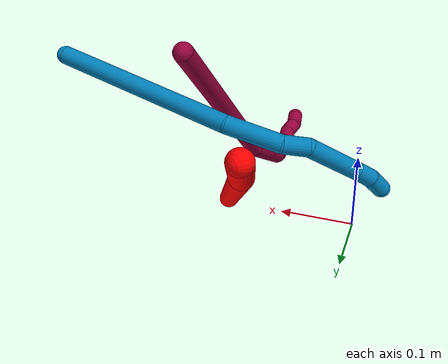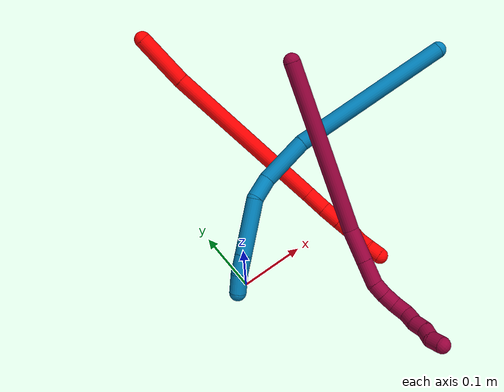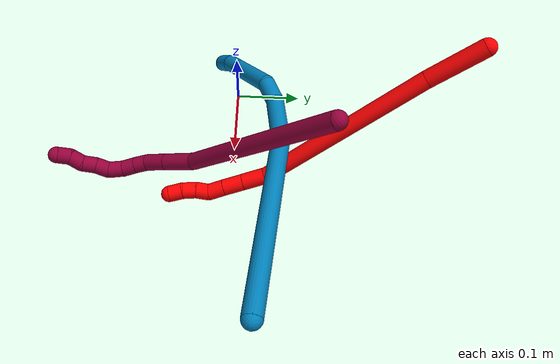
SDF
<sdf version="1.7">
 <world name="default">
  <model name="photoneo_s_sensor">
   <static>1</static>
   <pose>0 0 2 1.57079 1.57079 3.14159</pose>
   <link name="link">
    <inertial><mass>0.1</mass></inertial>
    <sensor name="sensor" type="depth">
     <update_rate>30</update_rate>
     <camera>
      <horizontal_fov>1.22</horizontal_fov>
      <image><width>1920</width><height>1200</height><format>B8G8R8</format></image>
      <clip><near>0.1</near><far>2</far></clip>
      <depth_camera><output>points</output></depth_camera>
     </camera>
     <plugin name="camera_plugin" filename="libgazebo_ros_depth_camera.so">
      <baseline>0.2</baseline>
      <alwaysOn>1</alwaysOn>
      <updateRate>0.0</updateRate>
      <cameraName>camera_ir</cameraName>
      <imageTopicName>/camera/color/image_raw</imageTopicName>
      <cameraInfoTopicName>/camera/color/camera_info</cameraInfoTopicName>
      <depthImageTopicName>/camera/depth/image_raw</depthImageTopicName>
      <depthImageCameraInfoTopicName>/camera/depth/camera_info</depthImageCameraInfoTopicName>
      <pointCloudTopicName>/camera/depth/points</pointCloudTopicName>
      <frameName>fr_optical</frameName>
      <pointCloudCutoff>0.1</pointCloudCutoff>
      <pointCloudCutoffMax>2.0</pointCloudCutoffMax>
      <distortionK1>0</distortionK1>
      <distortionK2>0</distortionK2>
      <distortionK3>0</distortionK3>
      <distortionT1>0</distortionT1>
      <distortionT2>0</distortionT2>
      <CxPrime>0</CxPrime>
      <Cx>0</Cx>
      <Cy>0</Cy>
      <focalLength>0</focalLength>
      <hackBaseline>0</hackBaseline>
     </plugin>
    </sensor>
   </link>
  </model>
  <model name="bin">
   <static>1</static>
   <link name="bottom">
    <collision name="collision-bottom">
     <pose>0 0 -0.01 0 -0 0</pose>
     <geometry><box><size>0.8 0.6 0.02</size></box></geometry>
     <surface>
      <friction><ode><mu>100</mu><mu2>100</mu2></ode></friction>
      <contact><collide_bitmask>65535</collide_bitmask></contact>
     </surface>
    </collision>
   </link>
   <link name="west_wall">
    <collision name="collision-west_wall">
     <pose>-0.41 0 0.1 0 -0 0</pose>
     <geometry><box><size>0.02 0.6 0.2</size></box></geometry>
     <surface>
      <friction><ode><mu>100</mu><mu2>100</mu2></ode></friction>
      <contact><collide_bitmask>65535</collide_bitmask></contact>
     </surface>
    </collision>
   </link>
   <link name="east_wall">
    <collision name="collision-east_wall">
     <pose>0.41 0 0.1 0 -0 0</pose>
     <geometry><box><size>0.02 0.6 0.2</size></box></geometry>
     <surface>
      <friction><ode><mu>100</mu><mu2>100</mu2></ode></friction>
      <contact><collide_bitmask>65535</collide_bitmask></contact>
     </surface>
    </collision>
   </link>
   <link name="south_wall">
    <collision name="collision-south_wall">
     <pose>0 -0.31 0.1 0 -0 0</pose>
     <geometry><box><size>0.8 0.02 0.2</size></box></geometry>
     <surface>
      <friction><ode><mu>100</mu><mu2>100</mu2></ode></friction>
      <contact><collide_bitmask>65535</collide_bitmask></contact>
     </surface>
    </collision>
   </link>
   <link name="north_wall">
    <collision name="collision-north_wall">
     <pose>0 0.31 0.1 0 -0 0</pose>
     <geometry><box><size>0.8 0.02 0.2</size></box></geometry>
     <surface>
      <friction><ode><mu>100</mu><mu2>100</mu2></ode></friction>
      <contact><collide_bitmask>65535</collide_bitmask></contact>
     </surface>
    </collision>
   </link>
  </model>
  <model name="2">
   <static>0</static>
   <link name="2">
    <collision name="collision-cylinder-e_1_1_4">
     <pose>0.01417 -0.028217 -0.025943 2.31424 0.35409 0.773995</pose>
     <geometry><cylinder><radius>0.0125</radius><length>0.081732</length></cylinder></geometry>
     <surface>
      <friction><ode><mu>1.16</mu><mu2>1.16</mu2><slip1>0</slip1><slip2>0</slip2></ode></friction>
      <contact><ode><kp>1e+06</kp><kd>1</kd><max_vel>0</max_vel><min_depth>0.001</min_depth></ode></contact>
     </surface>
    </collision>
    <visual name="visual-cylinder-e_1_1_4">
     <pose>0.01417 -0.028217 -0.025943 2.31424 0.35409 0.773995</pose>
     <geometry><cylinder><radius>0.0125</radius><length>0.081732</length></cylinder></geometry>
     <material><ambient>1 0 0 1</ambient></material>
    </visual>
    <collision name="collision-cylinder-e_2_4_5">
     <pose>0.067219 -0.155731 -0.130804 2.24234 0.297435 0.602039</pose>
     <geometry><cylinder><radius>0.0125</radius><length>0.265327</length></cylinder></geometry>
     <surface>
      <friction><ode><mu>1.16</mu><mu2>1.16</mu2><slip1>0</slip1><slip2>0</slip2></ode></friction>
      <contact><ode><kp>1e+06</kp><kd>1</kd><max_vel>0</max_vel><min_depth>0.001</min_depth></ode></contact>
     </surface>
    </collision>
    <visual name="visual-cylinder-e_2_4_5">
     <pose>0.067219 -0.155731 -0.130804 2.24234 0.297435 0.602039</pose>
     <geometry><cylinder><radius>0.0125</radius><length>0.265327</length></cylinder></geometry>
     <material><ambient>1 0 0 1</ambient></material>
    </visual>
    <collision name="collision-cylinder-e_3_5_6">
     <pose>0.107432 -0.266294 -0.223483 2.45554 0.074827 0.208848</pose>
     <geometry><cylinder><radius>0.0125</radius><length>0.035669</length></cylinder></geometry>
     <surface>
      <friction><ode><mu>1.16</mu><mu2>1.16</mu2><slip1>0</slip1><slip2>0</slip2></ode></friction>
      <contact><ode><kp>1e+06</kp><kd>1</kd><max_vel>0</max_vel><min_depth>0.001</min_depth></ode></contact>
     </surface>
    </collision>
    <visual name="visual-cylinder-e_3_5_6">
     <pose>0.107432 -0.266294 -0.223483 2.45554 0.074827 0.208848</pose>
     <geometry><cylinder><radius>0.0125</radius><length>0.035669</length></cylinder></geometry>
     <material><ambient>1 0 0 1</ambient></material>
    </visual>
    <collision name="collision-cylinder-e_4_6_7">
     <pose>0.109196 -0.287541 -0.249219 2.44678 0.027641 0.076305</pose>
     <geometry><cylinder><radius>0.0125</radius><length>0.03119</length></cylinder></geometry>
     <surface>
      <friction><ode><mu>1.16</mu><mu2>1.16</mu2><slip1>0</slip1><slip2>0</slip2></ode></friction>
      <contact><ode><kp>1e+06</kp><kd>1</kd><max_vel>0</max_vel><min_depth>0.001</min_depth></ode></contact>
     </surface>
    </collision>
    <visual name="visual-cylinder-e_4_6_7">
     <pose>0.109196 -0.287541 -0.249219 2.44678 0.027641 0.076305</pose>
     <geometry><cylinder><radius>0.0125</radius><length>0.03119</length></cylinder></geometry>
     <material><ambient>1 0 0 1</ambient></material>
    </visual>
    <collision name="collision-cylinder-e_5_7_8">
     <pose>0.110061 -0.305705 -0.270591 2.42513 0.034813 0.092931</pose>
     <geometry><cylinder><radius>0.0125</radius><length>0.024936</length></cylinder></geometry>
     <surface>
      <friction><ode><mu>1.16</mu><mu2>1.16</mu2><slip1>0</slip1><slip2>0</slip2></ode></friction>
      <contact><ode><kp>1e+06</kp><kd>1</kd><max_vel>0</max_vel><min_depth>0.001</min_depth></ode></contact>
     </surface>
    </collision>
    <visual name="visual-cylinder-e_5_7_8">
     <pose>0.110061 -0.305705 -0.270591 2.42513 0.034813 0.092931</pose>
     <geometry><cylinder><radius>0.0125</radius><length>0.024936</length></cylinder></geometry>
     <material><ambient>1 0 0 1</ambient></material>
    </visual>
    <collision name="collision-cylinder-e_6_8_9">
     <pose>0.108275 -0.316691 -0.289392 2.85187 -0.222468 -1.30689</pose>
     <geometry><cylinder><radius>0.0125</radius><length>0.020122</length></cylinder></geometry>
     <surface>
      <friction><ode><mu>1.16</mu><mu2>1.16</mu2><slip1>0</slip1><slip2>0</slip2></ode></friction>
      <contact><ode><kp>1e+06</kp><kd>1</kd><max_vel>0</max_vel><min_depth>0.001</min_depth></ode></contact>
     </surface>
    </collision>
    <visual name="visual-cylinder-e_6_8_9">
     <pose>0.108275 -0.316691 -0.289392 2.85187 -0.222468 -1.30689</pose>
     <geometry><cylinder><radius>0.0125</radius><length>0.020122</length></cylinder></geometry>
     <material><ambient>1 0 0 1</ambient></material>
    </visual>
    <collision name="collision-cylinder-e_7_9_10">
     <pose>0.103282 -0.324377 -0.307482 2.6295 -0.271485 -0.961738</pose>
     <geometry><cylinder><radius>0.0125</radius><length>0.020685</length></cylinder></geometry>
     <surface>
      <friction><ode><mu>1.16</mu><mu2>1.16</mu2><slip1>0</slip1><slip2>0</slip2></ode></friction>
      <contact><ode><kp>1e+06</kp><kd>1</kd><max_vel>0</max_vel><min_depth>0.001</min_depth></ode></contact>
     </surface>
    </collision>
    <visual name="visual-cylinder-e_7_9_10">
     <pose>0.103282 -0.324377 -0.307482 2.6295 -0.271485 -0.961738</pose>
     <geometry><cylinder><radius>0.0125</radius><length>0.020685</length></cylinder></geometry>
     <material><ambient>1 0 0 1</ambient></material>
    </visual>
    <collision name="collision-cylinder-e_8_10_2">
     <pose>0.09935 -0.335589 -0.324043 2.4646 -0.114084 -0.321612</pose>
     <geometry><cylinder><radius>0.0125</radius><length>0.02034</length></cylinder></geometry>
     <surface>
      <friction><ode><mu>1.16</mu><mu2>1.16</mu2><slip1>0</slip1><slip2>0</slip2></ode></friction>
      <contact><ode><kp>1e+06</kp><kd>1</kd><max_vel>0</max_vel><min_depth>0.001</min_depth></ode></contact>
     </surface>
    </collision>
    <visual name="visual-cylinder-e_8_10_2">
     <pose>0.09935 -0.335589 -0.324043 2.4646 -0.114084 -0.321612</pose>
     <geometry><cylinder><radius>0.0125</radius><length>0.02034</length></cylinder></geometry>
     <material><ambient>1 0 0 1</ambient></material>
    </visual>
    <collision name="collision-sphere-2">
     <pose>0.098193 -0.341918 -0.331918 0 -0 0</pose>
     <geometry><sphere><radius>0.0125</radius></sphere></geometry>
     <surface>
      <friction><ode><mu>1.16</mu><mu2>1.16</mu2><slip1>0</slip1><slip2>0</slip2></ode></friction>
      <contact><ode><kp>1e+06</kp><kd>1</kd><max_vel>0</max_vel><min_depth>0.001</min_depth></ode></contact>
     </surface>
    </collision>
    <visual name="visual-sphere-2">
     <pose>0.098193 -0.341918 -0.331918 0 -0 0</pose>
     <geometry><sphere><radius>0.0125</radius></sphere></geometry>
     <material><ambient>1 0 0 1</ambient></material>
    </visual>
    <collision name="collision-sphere-10">
     <pose>0.100508 -0.329259 -0.316167 0 -0 0</pose>
     <geometry><sphere><radius>0.0125</radius></sphere></geometry>
     <surface>
      <friction><ode><mu>1.16</mu><mu2>1.16</mu2><slip1>0</slip1><slip2>0</slip2></ode></friction>
      <contact><ode><kp>1e+06</kp><kd>1</kd><max_vel>0</max_vel><min_depth>0.001</min_depth></ode></contact>
     </surface>
    </collision>
    <visual name="visual-sphere-10">
     <pose>0.100508 -0.329259 -0.316167 0 -0 0</pose>
     <geometry><sphere><radius>0.0125</radius></sphere></geometry>
     <material><ambient>1 0 0 1</ambient></material>
    </visual>
    <collision name="collision-sphere-9">
     <pose>0.106055 -0.319495 -0.298796 0 -0 0</pose>
     <geometry><sphere><radius>0.0125</radius></sphere></geometry>
     <surface>
      <friction><ode><mu>1.16</mu><mu2>1.16</mu2><slip1>0</slip1><slip2>0</slip2></ode></friction>
      <contact><ode><kp>1e+06</kp><kd>1</kd><max_vel>0</max_vel><min_depth>0.001</min_depth></ode></contact>
     </surface>
    </collision>
    <visual name="visual-sphere-9">
     <pose>0.106055 -0.319495 -0.298796 0 -0 0</pose>
     <geometry><sphere><radius>0.0125</radius></sphere></geometry>
     <material><ambient>1 0 0 1</ambient></material>
    </visual>
    <collision name="collision-sphere-4">
     <pose>0.028339 -0.056434 -0.051886 0 -0 0</pose>
     <geometry><sphere><radius>0.0125</radius></sphere></geometry>
     <surface>
      <friction><ode><mu>1.16</mu><mu2>1.16</mu2><slip1>0</slip1><slip2>0</slip2></ode></friction>
      <contact><ode><kp>1e+06</kp><kd>1</kd><max_vel>0</max_vel><min_depth>0.001</min_depth></ode></contact>
     </surface>
    </collision>
    <visual name="visual-sphere-4">
     <pose>0.028339 -0.056434 -0.051886 0 -0 0</pose>
     <geometry><sphere><radius>0.0125</radius></sphere></geometry>
     <material><ambient>1 0 0 1</ambient></material>
    </visual>
    <collision name="collision-sphere-1">
     <geometry><sphere><radius>0.0125</radius></sphere></geometry>
     <surface>
      <friction><ode><mu>1.16</mu><mu2>1.16</mu2><slip1>0</slip1><slip2>0</slip2></ode></friction>
      <contact><ode><kp>1e+06</kp><kd>1</kd><max_vel>0</max_vel><min_depth>0.001</min_depth></ode></contact>
     </surface>
    </collision>
    <visual name="visual-sphere-1">
     <geometry><sphere><radius>0.0125</radius></sphere></geometry>
     <material><ambient>1 0 0 1</ambient></material>
    </visual>
    <collision name="collision-sphere-8">
     <pose>0.110495 -0.313888 -0.279988 0 -0 0</pose>
     <geometry><sphere><radius>0.0125</radius></sphere></geometry>
     <surface>
      <friction><ode><mu>1.16</mu><mu2>1.16</mu2><slip1>0</slip1><slip2>0</slip2></ode></friction>
      <contact><ode><kp>1e+06</kp><kd>1</kd><max_vel>0</max_vel><min_depth>0.001</min_depth></ode></contact>
     </surface>
    </collision>
    <visual name="visual-sphere-8">
     <pose>0.110495 -0.313888 -0.279988 0 -0 0</pose>
     <geometry><sphere><radius>0.0125</radius></sphere></geometry>
     <material><ambient>1 0 0 1</ambient></material>
    </visual>
    <collision name="collision-sphere-5">
     <pose>0.106098 -0.255028 -0.209722 0 -0 0</pose>
     <geometry><sphere><radius>0.0125</radius></sphere></geometry>
     <surface>
      <friction><ode><mu>1.16</mu><mu2>1.16</mu2><slip1>0</slip1><slip2>0</slip2></ode></friction>
      <contact><ode><kp>1e+06</kp><kd>1</kd><max_vel>0</max_vel><min_depth>0.001</min_depth></ode></contact>
     </surface>
    </collision>
    <visual name="visual-sphere-5">
     <pose>0.106098 -0.255028 -0.209722 0 -0 0</pose>
     <geometry><sphere><radius>0.0125</radius></sphere></geometry>
     <material><ambient>1 0 0 1</ambient></material>
    </visual>
    <collision name="collision-sphere-6">
     <pose>0.108765 -0.27756 -0.237244 0 -0 0</pose>
     <geometry><sphere><radius>0.0125</radius></sphere></geometry>
     <surface>
      <friction><ode><mu>1.16</mu><mu2>1.16</mu2><slip1>0</slip1><slip2>0</slip2></ode></friction>
      <contact><ode><kp>1e+06</kp><kd>1</kd><max_vel>0</max_vel><min_depth>0.001</min_depth></ode></contact>
     </surface>
    </collision>
    <visual name="visual-sphere-6">
     <pose>0.108765 -0.27756 -0.237244 0 -0 0</pose>
     <geometry><sphere><radius>0.0125</radius></sphere></geometry>
     <material><ambient>1 0 0 1</ambient></material>
    </visual>
    <collision name="collision-sphere-7">
     <pose>0.109627 -0.297522 -0.261194 0 -0 0</pose>
     <geometry><sphere><radius>0.0125</radius></sphere></geometry>
     <surface>
      <friction><ode><mu>1.16</mu><mu2>1.16</mu2><slip1>0</slip1><slip2>0</slip2></ode></friction>
      <contact><ode><kp>1e+06</kp><kd>1</kd><max_vel>0</max_vel><min_depth>0.001</min_depth></ode></contact>
     </surface>
    </collision>
    <visual name="visual-sphere-7">
     <pose>0.109627 -0.297522 -0.261194 0 -0 0</pose>
     <geometry><sphere><radius>0.0125</radius></sphere></geometry>
     <material><ambient>1 0 0 1</ambient></material>
    </visual>
    <inertial>
     <pose>0.070622 -0.179247 -0.156185 0 -0 0</pose>
     <mass>0.5</mass>
     <inertia>
      <ixx>0.002168</ixx>
      <ixy>0</ixy>
      <ixz>0</ixz>
      <iyy>0.000227</iyy>
      <iyz>0</iyz>
      <izz>0.000714</izz>
     </inertia>
    </inertial>
   </link>
   <pose>0.058066 0.321662 0.230423 1.44646 1.23314 2.5952</pose>
  </model>
  <model name="8">
   <static>0</static>
   <link name="8">
    <collision name="collision-cylinder-e_1_1_4">
     <pose>0.063906 0.00885 0.115668 -0.076362 0.503521 -0.019651</pose>
     <geometry><cylinder><radius>0.0125</radius><length>0.264888</length></cylinder></geometry>
     <surface>
      <friction><ode><mu>1.16</mu><mu2>1.16</mu2><slip1>0</slip1><slip2>0</slip2></ode></friction>
      <contact><ode><kp>1e+06</kp><kd>1</kd><max_vel>0</max_vel><min_depth>0.001</min_depth></ode></contact>
     </surface>
    </collision>
    <visual name="visual-cylinder-e_1_1_4">
     <pose>0.063906 0.00885 0.115668 -0.076362 0.503521 -0.019651</pose>
     <geometry><cylinder><radius>0.0125</radius><length>0.264888</length></cylinder></geometry>
     <material><ambient>0.584314 0 0.227451 1</ambient></material>
    </visual>
    <collision name="collision-cylinder-e_2_4_5">
     <pose>0.139021 0.011898 0.253475 0.256289 0.455447 0.059703</pose>
     <geometry><cylinder><radius>0.0125</radius><length>0.050968</length></cylinder></geometry>
     <surface>
      <friction><ode><mu>1.16</mu><mu2>1.16</mu2><slip1>0</slip1><slip2>0</slip2></ode></friction>
      <contact><ode><kp>1e+06</kp><kd>1</kd><max_vel>0</max_vel><min_depth>0.001</min_depth></ode></contact>
     </surface>
    </collision>
    <visual name="visual-cylinder-e_2_4_5">
     <pose>0.139021 0.011898 0.253475 0.256289 0.455447 0.059703</pose>
     <geometry><cylinder><radius>0.0125</radius><length>0.050968</length></cylinder></geometry>
     <material><ambient>0.584314 0 0.227451 1</ambient></material>
    </visual>
    <collision name="collision-cylinder-e_3_5_6">
     <pose>0.158408 0.001864 0.291766 0.256303 0.455409 0.059701</pose>
     <geometry><cylinder><radius>0.0125</radius><length>0.037184</length></cylinder></geometry>
     <surface>
      <friction><ode><mu>1.16</mu><mu2>1.16</mu2><slip1>0</slip1><slip2>0</slip2></ode></friction>
      <contact><ode><kp>1e+06</kp><kd>1</kd><max_vel>0</max_vel><min_depth>0.001</min_depth></ode></contact>
     </surface>
    </collision>
    <visual name="visual-cylinder-e_3_5_6">
     <pose>0.158408 0.001864 0.291766 0.256303 0.455409 0.059701</pose>
     <geometry><cylinder><radius>0.0125</radius><length>0.037184</length></cylinder></geometry>
     <material><ambient>0.584314 0 0.227451 1</ambient></material>
    </visual>
    <collision name="collision-cylinder-e_4_6_7">
     <pose>0.168101 -0.005335 0.317671 0.2952 0.147566 0.021979</pose>
     <geometry><cylinder><radius>0.0125</radius><length>0.020612</length></cylinder></geometry>
     <surface>
      <friction><ode><mu>1.16</mu><mu2>1.16</mu2><slip1>0</slip1><slip2>0</slip2></ode></friction>
      <contact><ode><kp>1e+06</kp><kd>1</kd><max_vel>0</max_vel><min_depth>0.001</min_depth></ode></contact>
     </surface>
    </collision>
    <visual name="visual-cylinder-e_4_6_7">
     <pose>0.168101 -0.005335 0.317671 0.2952 0.147566 0.021979</pose>
     <geometry><cylinder><radius>0.0125</radius><length>0.020612</length></cylinder></geometry>
     <material><ambient>0.584314 0 0.227451 1</ambient></material>
    </visual>
    <collision name="collision-cylinder-e_5_7_8">
     <pose>0.169988 -0.011702 0.337819 0.316257 0.033994 0.005421</pose>
     <geometry><cylinder><radius>0.0125</radius><length>0.021889</length></cylinder></geometry>
     <surface>
      <friction><ode><mu>1.16</mu><mu2>1.16</mu2><slip1>0</slip1><slip2>0</slip2></ode></friction>
      <contact><ode><kp>1e+06</kp><kd>1</kd><max_vel>0</max_vel><min_depth>0.001</min_depth></ode></contact>
     </surface>
    </collision>
    <visual name="visual-cylinder-e_5_7_8">
     <pose>0.169988 -0.011702 0.337819 0.316257 0.033994 0.005421</pose>
     <geometry><cylinder><radius>0.0125</radius><length>0.021889</length></cylinder></geometry>
     <material><ambient>0.584314 0 0.227451 1</ambient></material>
    </visual>
    <collision name="collision-cylinder-e_6_8_9">
     <pose>0.169725 -0.021555 0.357455 0.609503 -0.056318 -0.017719</pose>
     <geometry><cylinder><radius>0.0125</radius><length>0.022573</length></cylinder></geometry>
     <surface>
      <friction><ode><mu>1.16</mu><mu2>1.16</mu2><slip1>0</slip1><slip2>0</slip2></ode></friction>
      <contact><ode><kp>1e+06</kp><kd>1</kd><max_vel>0</max_vel><min_depth>0.001</min_depth></ode></contact>
     </surface>
    </collision>
    <visual name="visual-cylinder-e_6_8_9">
     <pose>0.169725 -0.021555 0.357455 0.609503 -0.056318 -0.017719</pose>
     <geometry><cylinder><radius>0.0125</radius><length>0.022573</length></cylinder></geometry>
     <material><ambient>0.584314 0 0.227451 1</ambient></material>
    </visual>
    <collision name="collision-cylinder-e_7_9_10">
     <pose>0.170367 -0.036824 0.371932 1.0348 0.123916 0.070584</pose>
     <geometry><cylinder><radius>0.0125</radius><length>0.020672</length></cylinder></geometry>
     <surface>
      <friction><ode><mu>1.16</mu><mu2>1.16</mu2><slip1>0</slip1><slip2>0</slip2></ode></friction>
      <contact><ode><kp>1e+06</kp><kd>1</kd><max_vel>0</max_vel><min_depth>0.001</min_depth></ode></contact>
     </surface>
    </collision>
    <visual name="visual-cylinder-e_7_9_10">
     <pose>0.170367 -0.036824 0.371932 1.0348 0.123916 0.070584</pose>
     <geometry><cylinder><radius>0.0125</radius><length>0.020672</length></cylinder></geometry>
     <material><ambient>0.584314 0 0.227451 1</ambient></material>
    </visual>
    <collision name="collision-cylinder-e_8_10_11">
     <pose>0.170338 -0.05416 0.382897 0.978887 -0.126584 -0.067493</pose>
     <geometry><cylinder><radius>0.0125</radius><length>0.020694</length></cylinder></geometry>
     <surface>
      <friction><ode><mu>1.16</mu><mu2>1.16</mu2><slip1>0</slip1><slip2>0</slip2></ode></friction>
      <contact><ode><kp>1e+06</kp><kd>1</kd><max_vel>0</max_vel><min_depth>0.001</min_depth></ode></contact>
     </surface>
    </collision>
    <visual name="visual-cylinder-e_8_10_11">
     <pose>0.170338 -0.05416 0.382897 0.978887 -0.126584 -0.067493</pose>
     <geometry><cylinder><radius>0.0125</radius><length>0.020694</length></cylinder></geometry>
     <material><ambient>0.584314 0 0.227451 1</ambient></material>
    </visual>
    <collision name="collision-cylinder-e_9_11_12">
     <pose>0.171118 -0.071927 0.392257 1.19645 0.206978 0.141332</pose>
     <geometry><cylinder><radius>0.0125</radius><length>0.020307</length></cylinder></geometry>
     <surface>
      <friction><ode><mu>1.16</mu><mu2>1.16</mu2><slip1>0</slip1><slip2>0</slip2></ode></friction>
      <contact><ode><kp>1e+06</kp><kd>1</kd><max_vel>0</max_vel><min_depth>0.001</min_depth></ode></contact>
     </surface>
    </collision>
    <visual name="visual-cylinder-e_9_11_12">
     <pose>0.171118 -0.071927 0.392257 1.19645 0.206978 0.141332</pose>
     <geometry><cylinder><radius>0.0125</radius><length>0.020307</length></cylinder></geometry>
     <material><ambient>0.584314 0 0.227451 1</ambient></material>
    </visual>
    <collision name="collision-cylinder-e_10_12_2">
     <pose>0.171022 -0.089593 0.401041 1.02175 -0.217689 -0.122347</pose>
     <geometry><cylinder><radius>0.0125</radius><length>0.020213</length></cylinder></geometry>
     <surface>
      <friction><ode><mu>1.16</mu><mu2>1.16</mu2><slip1>0</slip1><slip2>0</slip2></ode></friction>
      <contact><ode><kp>1e+06</kp><kd>1</kd><max_vel>0</max_vel><min_depth>0.001</min_depth></ode></contact>
     </surface>
    </collision>
    <visual name="visual-cylinder-e_10_12_2">
     <pose>0.171022 -0.089593 0.401041 1.02175 -0.217689 -0.122347</pose>
     <geometry><cylinder><radius>0.0125</radius><length>0.020213</length></cylinder></geometry>
     <material><ambient>0.584314 0 0.227451 1</ambient></material>
    </visual>
    <collision name="collision-sphere-2">
     <pose>0.16884 -0.098011 0.406191 0 -0 0</pose>
     <geometry><sphere><radius>0.0125</radius></sphere></geometry>
     <surface>
      <friction><ode><mu>1.16</mu><mu2>1.16</mu2><slip1>0</slip1><slip2>0</slip2></ode></friction>
      <contact><ode><kp>1e+06</kp><kd>1</kd><max_vel>0</max_vel><min_depth>0.001</min_depth></ode></contact>
     </surface>
    </collision>
    <visual name="visual-sphere-2">
     <pose>0.16884 -0.098011 0.406191 0 -0 0</pose>
     <geometry><sphere><radius>0.0125</radius></sphere></geometry>
     <material><ambient>0.584314 0 0.227451 1</ambient></material>
    </visual>
    <collision name="collision-sphere-12">
     <pose>0.173205 -0.081176 0.395891 0 -0 0</pose>
     <geometry><sphere><radius>0.0125</radius></sphere></geometry>
     <surface>
      <friction><ode><mu>1.16</mu><mu2>1.16</mu2><slip1>0</slip1><slip2>0</slip2></ode></friction>
      <contact><ode><kp>1e+06</kp><kd>1</kd><max_vel>0</max_vel><min_depth>0.001</min_depth></ode></contact>
     </surface>
    </collision>
    <visual name="visual-sphere-12">
     <pose>0.173205 -0.081176 0.395891 0 -0 0</pose>
     <geometry><sphere><radius>0.0125</radius></sphere></geometry>
     <material><ambient>0.584314 0 0.227451 1</ambient></material>
    </visual>
    <collision name="collision-sphere-11">
     <pose>0.169032 -0.062679 0.388624 0 -0 0</pose>
     <geometry><sphere><radius>0.0125</radius></sphere></geometry>
     <surface>
      <friction><ode><mu>1.16</mu><mu2>1.16</mu2><slip1>0</slip1><slip2>0</slip2></ode></friction>
      <contact><ode><kp>1e+06</kp><kd>1</kd><max_vel>0</max_vel><min_depth>0.001</min_depth></ode></contact>
     </surface>
    </collision>
    <visual name="visual-sphere-11">
     <pose>0.169032 -0.062679 0.388624 0 -0 0</pose>
     <geometry><sphere><radius>0.0125</radius></sphere></geometry>
     <material><ambient>0.584314 0 0.227451 1</ambient></material>
    </visual>
    <collision name="collision-sphere-10">
     <pose>0.171644 -0.045642 0.37717 0 -0 0</pose>
     <geometry><sphere><radius>0.0125</radius></sphere></geometry>
     <surface>
      <friction><ode><mu>1.16</mu><mu2>1.16</mu2><slip1>0</slip1><slip2>0</slip2></ode></friction>
      <contact><ode><kp>1e+06</kp><kd>1</kd><max_vel>0</max_vel><min_depth>0.001</min_depth></ode></contact>
     </surface>
    </collision>
    <visual name="visual-sphere-10">
     <pose>0.171644 -0.045642 0.37717 0 -0 0</pose>
     <geometry><sphere><radius>0.0125</radius></sphere></geometry>
     <material><ambient>0.584314 0 0.227451 1</ambient></material>
    </visual>
    <collision name="collision-sphere-9">
     <pose>0.169089 -0.028006 0.366694 0 -0 0</pose>
     <geometry><sphere><radius>0.0125</radius></sphere></geometry>
     <surface>
      <friction><ode><mu>1.16</mu><mu2>1.16</mu2><slip1>0</slip1><slip2>0</slip2></ode></friction>
      <contact><ode><kp>1e+06</kp><kd>1</kd><max_vel>0</max_vel><min_depth>0.001</min_depth></ode></contact>
     </surface>
    </collision>
    <visual name="visual-sphere-9">
     <pose>0.169089 -0.028006 0.366694 0 -0 0</pose>
     <geometry><sphere><radius>0.0125</radius></sphere></geometry>
     <material><ambient>0.584314 0 0.227451 1</ambient></material>
    </visual>
    <collision name="collision-sphere-4">
     <pose>0.127812 0.0177 0.231337 0 -0 0</pose>
     <geometry><sphere><radius>0.0125</radius></sphere></geometry>
     <surface>
      <friction><ode><mu>1.16</mu><mu2>1.16</mu2><slip1>0</slip1><slip2>0</slip2></ode></friction>
      <contact><ode><kp>1e+06</kp><kd>1</kd><max_vel>0</max_vel><min_depth>0.001</min_depth></ode></contact>
     </surface>
    </collision>
    <visual name="visual-sphere-4">
     <pose>0.127812 0.0177 0.231337 0 -0 0</pose>
     <geometry><sphere><radius>0.0125</radius></sphere></geometry>
     <material><ambient>0.584314 0 0.227451 1</ambient></material>
    </visual>
    <collision name="collision-sphere-1">
     <geometry><sphere><radius>0.0125</radius></sphere></geometry>
     <surface>
      <friction><ode><mu>1.16</mu><mu2>1.16</mu2><slip1>0</slip1><slip2>0</slip2></ode></friction>
      <contact><ode><kp>1e+06</kp><kd>1</kd><max_vel>0</max_vel><min_depth>0.001</min_depth></ode></contact>
     </surface>
    </collision>
    <visual name="visual-sphere-1">
     <geometry><sphere><radius>0.0125</radius></sphere></geometry>
     <material><ambient>0.584314 0 0.227451 1</ambient></material>
    </visual>
    <collision name="collision-sphere-8">
     <pose>0.17036 -0.015104 0.348215 0 -0 0</pose>
     <geometry><sphere><radius>0.0125</radius></sphere></geometry>
     <surface>
      <friction><ode><mu>1.16</mu><mu2>1.16</mu2><slip1>0</slip1><slip2>0</slip2></ode></friction>
      <contact><ode><kp>1e+06</kp><kd>1</kd><max_vel>0</max_vel><min_depth>0.001</min_depth></ode></contact>
     </surface>
    </collision>
    <visual name="visual-sphere-8">
     <pose>0.17036 -0.015104 0.348215 0 -0 0</pose>
     <geometry><sphere><radius>0.0125</radius></sphere></geometry>
     <material><ambient>0.584314 0 0.227451 1</ambient></material>
    </visual>
    <collision name="collision-sphere-5">
     <pose>0.150231 0.006097 0.275614 0 -0 0</pose>
     <geometry><sphere><radius>0.0125</radius></sphere></geometry>
     <surface>
      <friction><ode><mu>1.16</mu><mu2>1.16</mu2><slip1>0</slip1><slip2>0</slip2></ode></friction>
      <contact><ode><kp>1e+06</kp><kd>1</kd><max_vel>0</max_vel><min_depth>0.001</min_depth></ode></contact>
     </surface>
    </collision>
    <visual name="visual-sphere-5">
     <pose>0.150231 0.006097 0.275614 0 -0 0</pose>
     <geometry><sphere><radius>0.0125</radius></sphere></geometry>
     <material><ambient>0.584314 0 0.227451 1</ambient></material>
    </visual>
    <collision name="collision-sphere-6">
     <pose>0.166585 -0.002369 0.307918 0 -0 0</pose>
     <geometry><sphere><radius>0.0125</radius></sphere></geometry>
     <surface>
      <friction><ode><mu>1.16</mu><mu2>1.16</mu2><slip1>0</slip1><slip2>0</slip2></ode></friction>
      <contact><ode><kp>1e+06</kp><kd>1</kd><max_vel>0</max_vel><min_depth>0.001</min_depth></ode></contact>
     </surface>
    </collision>
    <visual name="visual-sphere-6">
     <pose>0.166585 -0.002369 0.307918 0 -0 0</pose>
     <geometry><sphere><radius>0.0125</radius></sphere></geometry>
     <material><ambient>0.584314 0 0.227451 1</ambient></material>
    </visual>
    <collision name="collision-sphere-7">
     <pose>0.169616 -0.0083 0.327424 0 -0 0</pose>
     <geometry><sphere><radius>0.0125</radius></sphere></geometry>
     <surface>
      <friction><ode><mu>1.16</mu><mu2>1.16</mu2><slip1>0</slip1><slip2>0</slip2></ode></friction>
      <contact><ode><kp>1e+06</kp><kd>1</kd><max_vel>0</max_vel><min_depth>0.001</min_depth></ode></contact>
     </surface>
    </collision>
    <visual name="visual-sphere-7">
     <pose>0.169616 -0.0083 0.327424 0 -0 0</pose>
     <geometry><sphere><radius>0.0125</radius></sphere></geometry>
     <material><ambient>0.584314 0 0.227451 1</ambient></material>
    </visual>
    <inertial>
     <pose>0.109799 -0.005973 0.216205 0 -0 0</pose>
     <mass>0.5</mass>
     <inertia>
      <ixx>0.001381</ixx>
      <ixy>0</ixy>
      <ixz>0</ixz>
      <iyy>0.001548</iyy>
      <iyz>0</iyz>
      <izz>-0.000822</izz>
     </inertia>
    </inertial>
   </link>
   <pose>0.189639 0.128622 0.257707 -2.19159 0.448419 -3.03676</pose>
  </model>
  <model name="9">
   <static>0</static>
   <link name="9">
    <collision name="collision-cylinder-e_1_1_4">
     <pose>-0.071212 0.024289 -0.100371 -2.90416 -0.603702 2.40993</pose>
     <geometry><cylinder><radius>0.0125</radius><length>0.250882</length></cylinder></geometry>
     <surface>
      <friction><ode><mu>1.16</mu><mu2>1.16</mu2><slip1>0</slip1><slip2>0</slip2></ode></friction>
      <contact><ode><kp>1e+06</kp><kd>1</kd><max_vel>0</max_vel><min_depth>0.001</min_depth></ode></contact>
     </surface>
    </collision>
    <visual name="visual-cylinder-e_1_1_4">
     <pose>-0.071212 0.024289 -0.100371 -2.90416 -0.603702 2.40993</pose>
     <geometry><cylinder><radius>0.0125</radius><length>0.250882</length></cylinder></geometry>
     <material><ambient>0 0.490196 0.709804 1</ambient></material>
    </visual>
    <collision name="collision-cylinder-e_2_4_5">
     <pose>-0.159238 0.049829 -0.234655 -3.10475 -0.460012 2.98455</pose>
     <geometry><cylinder><radius>0.0125</radius><length>0.075748</length></cylinder></geometry>
     <surface>
      <friction><ode><mu>1.16</mu><mu2>1.16</mu2><slip1>0</slip1><slip2>0</slip2></ode></friction>
      <contact><ode><kp>1e+06</kp><kd>1</kd><max_vel>0</max_vel><min_depth>0.001</min_depth></ode></contact>
     </surface>
    </collision>
    <visual name="visual-cylinder-e_2_4_5">
     <pose>-0.159238 0.049829 -0.234655 -3.10475 -0.460012 2.98455</pose>
     <geometry><cylinder><radius>0.0125</radius><length>0.075748</length></cylinder></geometry>
     <material><ambient>0 0.490196 0.709804 1</ambient></material>
    </visual>
    <collision name="collision-cylinder-e_3_5_6">
     <pose>-0.182571 0.04673 -0.284078 2.86821 -0.384547 -1.9114</pose>
     <geometry><cylinder><radius>0.0125</radius><length>0.034752</length></cylinder></geometry>
     <surface>
      <friction><ode><mu>1.16</mu><mu2>1.16</mu2><slip1>0</slip1><slip2>0</slip2></ode></friction>
      <contact><ode><kp>1e+06</kp><kd>1</kd><max_vel>0</max_vel><min_depth>0.001</min_depth></ode></contact>
     </surface>
    </collision>
    <visual name="visual-cylinder-e_3_5_6">
     <pose>-0.182571 0.04673 -0.284078 2.86821 -0.384547 -1.9114</pose>
     <geometry><cylinder><radius>0.0125</radius><length>0.034752</length></cylinder></geometry>
     <material><ambient>0 0.490196 0.709804 1</ambient></material>
    </visual>
    <collision name="collision-cylinder-e_4_6_7">
     <pose>-0.186193 0.036229 -0.340648 2.99285 0.069647 0.874742</pose>
     <geometry><cylinder><radius>0.0125</radius><length>0.083242</length></cylinder></geometry>
     <surface>
      <friction><ode><mu>1.16</mu><mu2>1.16</mu2><slip1>0</slip1><slip2>0</slip2></ode></friction>
      <contact><ode><kp>1e+06</kp><kd>1</kd><max_vel>0</max_vel><min_depth>0.001</min_depth></ode></contact>
     </surface>
    </collision>
    <visual name="visual-cylinder-e_4_6_7">
     <pose>-0.186193 0.036229 -0.340648 2.99285 0.069647 0.874742</pose>
     <geometry><cylinder><radius>0.0125</radius><length>0.083242</length></cylinder></geometry>
     <material><ambient>0 0.490196 0.709804 1</ambient></material>
    </visual>
    <collision name="collision-cylinder-e_5_7_8">
     <pose>-0.182264 0.028298 -0.395181 3.01043 0.075887 1.04816</pose>
     <geometry><cylinder><radius>0.0125</radius><length>0.027253</length></cylinder></geometry>
     <surface>
      <friction><ode><mu>1.16</mu><mu2>1.16</mu2><slip1>0</slip1><slip2>0</slip2></ode></friction>
      <contact><ode><kp>1e+06</kp><kd>1</kd><max_vel>0</max_vel><min_depth>0.001</min_depth></ode></contact>
     </surface>
    </collision>
    <visual name="visual-cylinder-e_5_7_8">
     <pose>-0.182264 0.028298 -0.395181 3.01043 0.075887 1.04816</pose>
     <geometry><cylinder><radius>0.0125</radius><length>0.027253</length></cylinder></geometry>
     <material><ambient>0 0.490196 0.709804 1</ambient></material>
    </visual>
    <collision name="collision-cylinder-e_6_8_2">
     <pose>-0.177315 0.026415 -0.422156 3.13374 0.282209 3.08635</pose>
     <geometry><cylinder><radius>0.0125</radius><length>0.028124</length></cylinder></geometry>
     <surface>
      <friction><ode><mu>1.16</mu><mu2>1.16</mu2><slip1>0</slip1><slip2>0</slip2></ode></friction>
      <contact><ode><kp>1e+06</kp><kd>1</kd><max_vel>0</max_vel><min_depth>0.001</min_depth></ode></contact>
     </surface>
    </collision>
    <visual name="visual-cylinder-e_6_8_2">
     <pose>-0.177315 0.026415 -0.422156 3.13374 0.282209 3.08635</pose>
     <geometry><cylinder><radius>0.0125</radius><length>0.028124</length></cylinder></geometry>
     <material><ambient>0 0.490196 0.709804 1</ambient></material>
    </visual>
    <collision name="collision-sphere-2">
     <pose>-0.173399 0.026309 -0.435661 0 -0 0</pose>
     <geometry><sphere><radius>0.0125</radius></sphere></geometry>
     <surface>
      <friction><ode><mu>1.16</mu><mu2>1.16</mu2><slip1>0</slip1><slip2>0</slip2></ode></friction>
      <contact><ode><kp>1e+06</kp><kd>1</kd><max_vel>0</max_vel><min_depth>0.001</min_depth></ode></contact>
     </surface>
    </collision>
    <visual name="visual-sphere-2">
     <pose>-0.173399 0.026309 -0.435661 0 -0 0</pose>
     <geometry><sphere><radius>0.0125</radius></sphere></geometry>
     <material><ambient>0 0.490196 0.709804 1</ambient></material>
    </visual>
    <collision name="collision-sphere-4">
     <pose>-0.142424 0.048579 -0.200741 0 -0 0</pose>
     <geometry><sphere><radius>0.0125</radius></sphere></geometry>
     <surface>
      <friction><ode><mu>1.16</mu><mu2>1.16</mu2><slip1>0</slip1><slip2>0</slip2></ode></friction>
      <contact><ode><kp>1e+06</kp><kd>1</kd><max_vel>0</max_vel><min_depth>0.001</min_depth></ode></contact>
     </surface>
    </collision>
    <visual name="visual-sphere-4">
     <pose>-0.142424 0.048579 -0.200741 0 -0 0</pose>
     <geometry><sphere><radius>0.0125</radius></sphere></geometry>
     <material><ambient>0 0.490196 0.709804 1</ambient></material>
    </visual>
    <collision name="collision-sphere-1">
     <geometry><sphere><radius>0.0125</radius></sphere></geometry>
     <surface>
      <friction><ode><mu>1.16</mu><mu2>1.16</mu2><slip1>0</slip1><slip2>0</slip2></ode></friction>
      <contact><ode><kp>1e+06</kp><kd>1</kd><max_vel>0</max_vel><min_depth>0.001</min_depth></ode></contact>
     </surface>
    </collision>
    <visual name="visual-sphere-1">
     <geometry><sphere><radius>0.0125</radius></sphere></geometry>
     <material><ambient>0 0.490196 0.709804 1</ambient></material>
    </visual>
    <collision name="collision-sphere-8">
     <pose>-0.181231 0.026521 -0.408651 0 -0 0</pose>
     <geometry><sphere><radius>0.0125</radius></sphere></geometry>
     <surface>
      <friction><ode><mu>1.16</mu><mu2>1.16</mu2><slip1>0</slip1><slip2>0</slip2></ode></friction>
      <contact><ode><kp>1e+06</kp><kd>1</kd><max_vel>0</max_vel><min_depth>0.001</min_depth></ode></contact>
     </surface>
    </collision>
    <visual name="visual-sphere-8">
     <pose>-0.181231 0.026521 -0.408651 0 -0 0</pose>
     <geometry><sphere><radius>0.0125</radius></sphere></geometry>
     <material><ambient>0 0.490196 0.709804 1</ambient></material>
    </visual>
    <collision name="collision-sphere-5">
     <pose>-0.176053 0.051079 -0.268569 0 -0 0</pose>
     <geometry><sphere><radius>0.0125</radius></sphere></geometry>
     <surface>
      <friction><ode><mu>1.16</mu><mu2>1.16</mu2><slip1>0</slip1><slip2>0</slip2></ode></friction>
      <contact><ode><kp>1e+06</kp><kd>1</kd><max_vel>0</max_vel><min_depth>0.001</min_depth></ode></contact>
     </surface>
    </collision>
    <visual name="visual-sphere-5">
     <pose>-0.176053 0.051079 -0.268569 0 -0 0</pose>
     <geometry><sphere><radius>0.0125</radius></sphere></geometry>
     <material><ambient>0 0.490196 0.709804 1</ambient></material>
    </visual>
    <collision name="collision-sphere-6">
     <pose>-0.18909 0.042382 -0.299587 0 -0 0</pose>
     <geometry><sphere><radius>0.0125</radius></sphere></geometry>
     <surface>
      <friction><ode><mu>1.16</mu><mu2>1.16</mu2><slip1>0</slip1><slip2>0</slip2></ode></friction>
      <contact><ode><kp>1e+06</kp><kd>1</kd><max_vel>0</max_vel><min_depth>0.001</min_depth></ode></contact>
     </surface>
    </collision>
    <visual name="visual-sphere-6">
     <pose>-0.18909 0.042382 -0.299587 0 -0 0</pose>
     <geometry><sphere><radius>0.0125</radius></sphere></geometry>
     <material><ambient>0 0.490196 0.709804 1</ambient></material>
    </visual>
    <collision name="collision-sphere-7">
     <pose>-0.183297 0.030076 -0.38171 0 -0 0</pose>
     <geometry><sphere><radius>0.0125</radius></sphere></geometry>
     <surface>
      <friction><ode><mu>1.16</mu><mu2>1.16</mu2><slip1>0</slip1><slip2>0</slip2></ode></friction>
      <contact><ode><kp>1e+06</kp><kd>1</kd><max_vel>0</max_vel><min_depth>0.001</min_depth></ode></contact>
     </surface>
    </collision>
    <visual name="visual-sphere-7">
     <pose>-0.183297 0.030076 -0.38171 0 -0 0</pose>
     <geometry><sphere><radius>0.0125</radius></sphere></geometry>
     <material><ambient>0 0.490196 0.709804 1</ambient></material>
    </visual>
    <inertial>
     <pose>-0.123451 0.032044 -0.207653 0 -0 0</pose>
     <mass>0.5</mass>
     <inertia>
      <ixx>-5.8e-05</ixx>
      <ixy>0</ixy>
      <ixz>0</ixz>
      <iyy>0.001862</iyy>
      <iyz>0</iyz>
      <izz>0.000484</izz>
     </inertia>
    </inertial>
   </link>
   <pose>0.403464 0.044356 0.212702 -0.788825 0.621953 -0.562262</pose>
  </model>
 </world>
</sdf>
